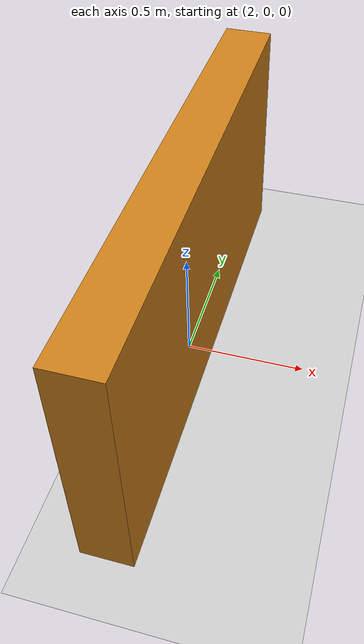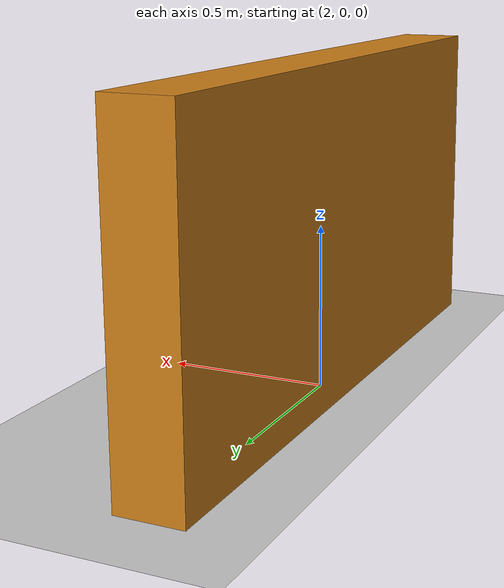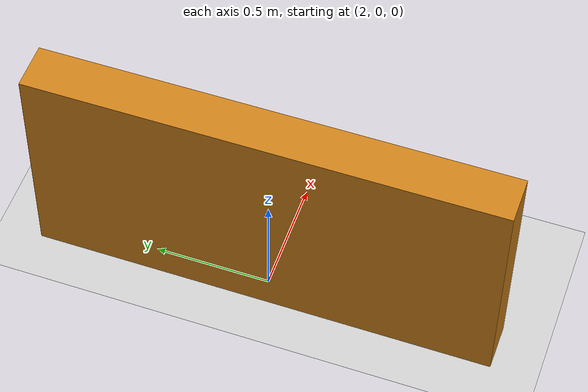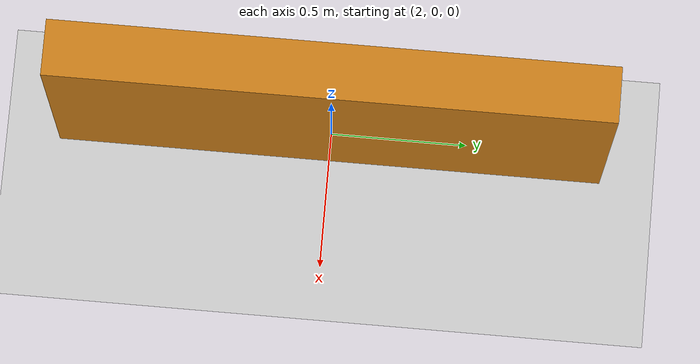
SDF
<?xml version="1.0"?>
<sdf version="1.6">
  <world name="lidar_test">
    <include><uri>model://ground_plane</uri></include>
    <include><uri>model://sun</uri></include>
    <physics name="default_physics" type="ode">
      <max_step_size>0.001</max_step_size><real_time_factor>1.0</real_time_factor>
    </physics>
    <!-- At the initial robot pose, the wall's near face is 1.90 m ahead. -->
    <model name="test_wall">
      <static>true</static>
      <pose>2 0 0.5 0 0 0</pose>
      <link name="wall">
        <collision name="collision"><geometry><box><size>0.2 2 1</size></box></geometry></collision>
        <visual name="visual">
          <geometry><box><size>0.2 2 1</size></box></geometry>
          <material><ambient>0.8 0.5 0.1 1</ambient><diffuse>0.8 0.5 0.1 1</diffuse></material>
        </visual>
      </link>
    </model>
  </world>
</sdf>
